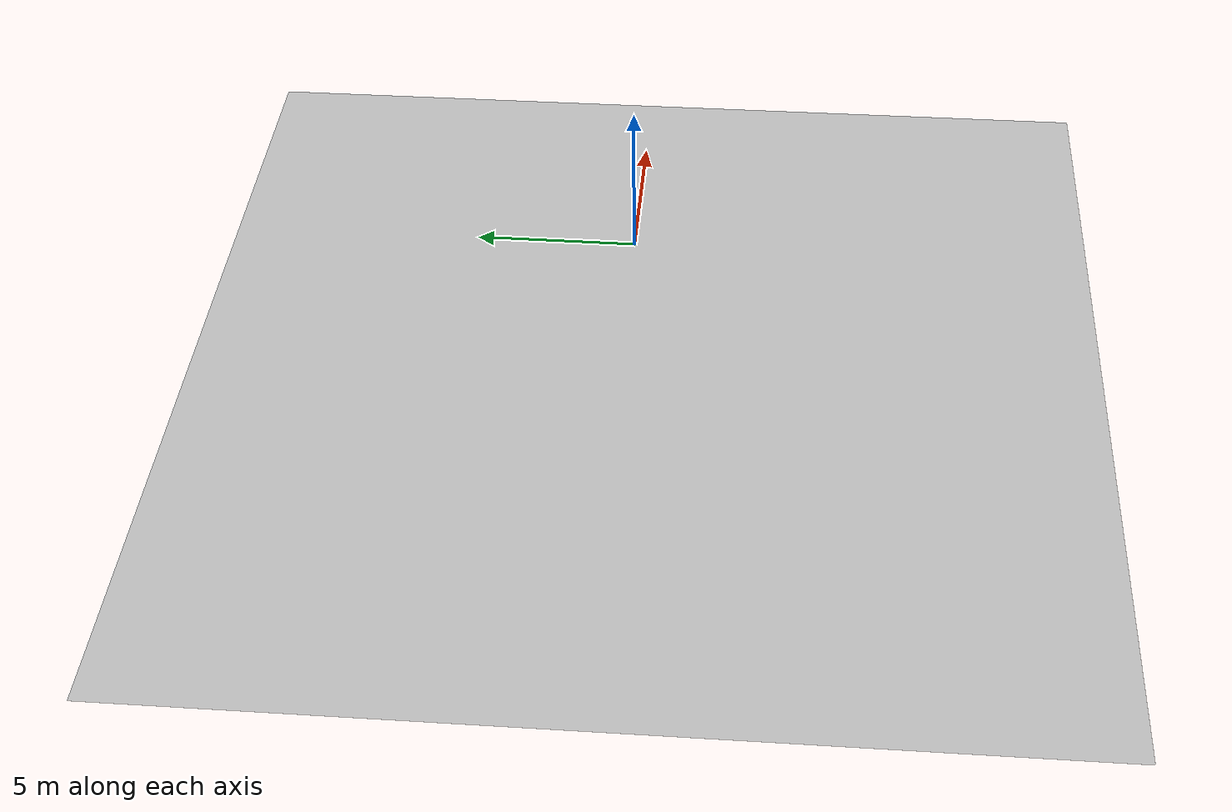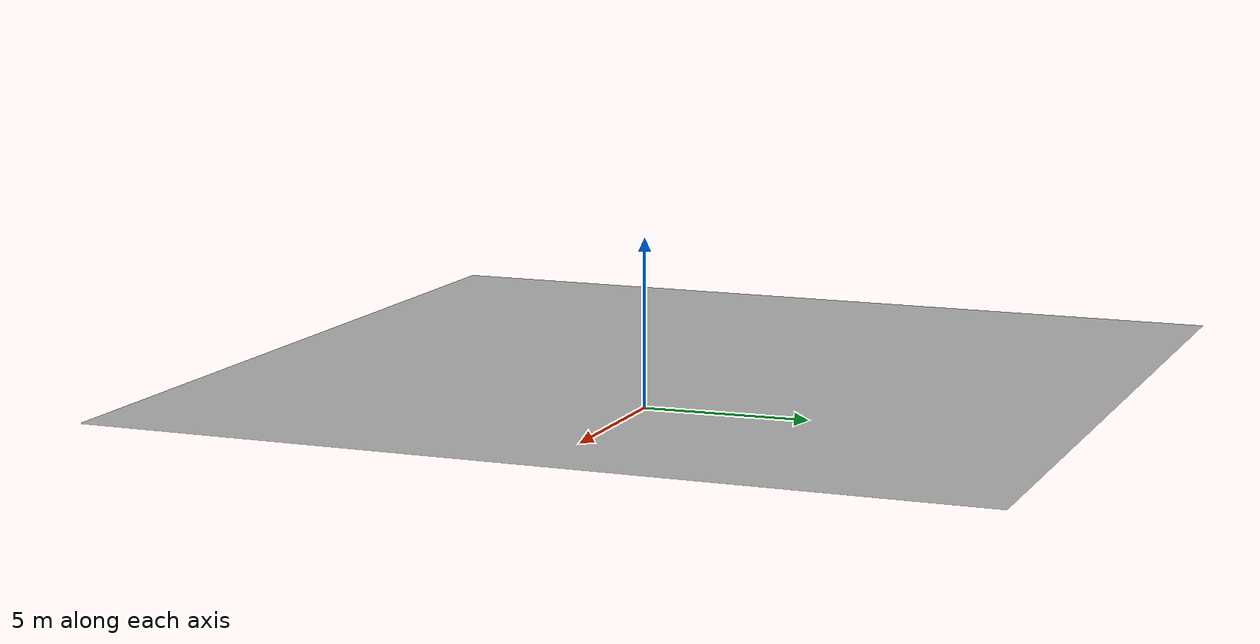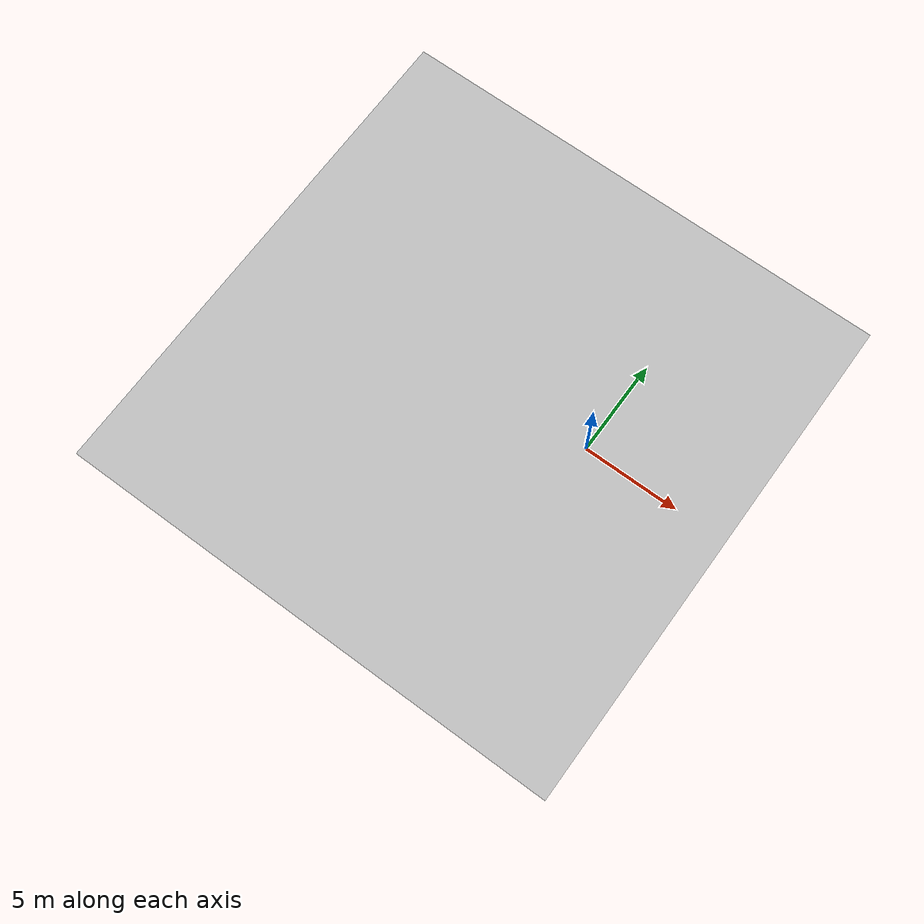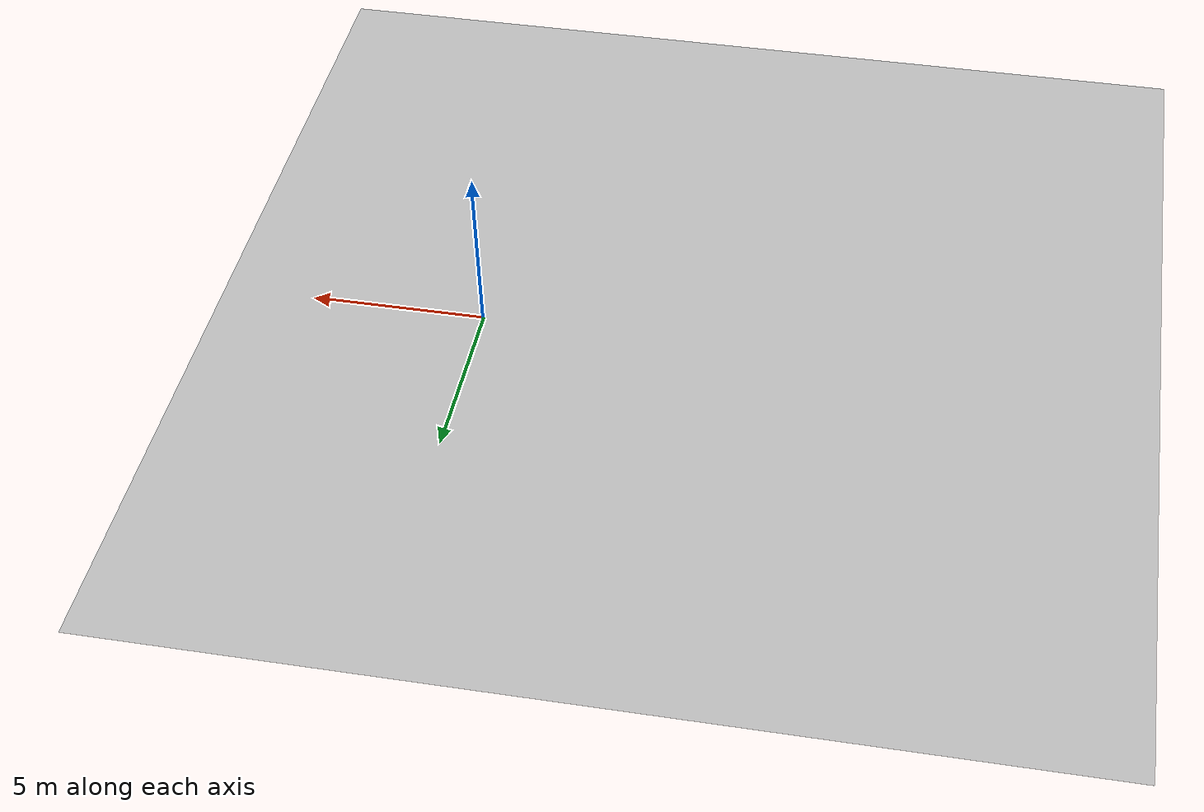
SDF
<?xml version='1.0'?>
<sdf version='1.6'>
  <model name='worlcell_floor_2021'>
    <static>true</static>
    <link name="link">
      <pose>0 1.9 0 0 0 0</pose>
      <visual name="visual">
            <geometry>
                <mesh>
                  <scale>0.6 1 1</scale>
                  <uri>model://workcell_floor_2021/meshes/floor.dae</uri>
                </mesh>
            </geometry>
        </visual>
        <collision name="collision">
            <geometry>
                <mesh>
                  <scale>0.6 1 1</scale>
                  <uri>model://workcell_floor_2021/meshes/floor.dae</uri>
                </mesh>
            </geometry>
        </collision>
        <sensor name='object_disposal_contact' type='contact'>
        <update_rate>10</update_rate>
        <contact>
           <collision>collision</collision>
        </contact>
      </sensor>
    </link>
    <plugin name="object_disposal_plugin" filename="libObjectDisposalPlugin.so">
      <contact_sensor_name>object_disposal_contact</contact_sensor_name>
      <contact_side_normal>1 0 0</contact_side_normal>
      <disposal_pose>30 30 0 0 0 0</disposal_pose>
      <update_rate>5</update_rate>
      <penalty_topic>/ariac/floor_penalty</penalty_topic>
    </plugin>
  </model>
</sdf>
